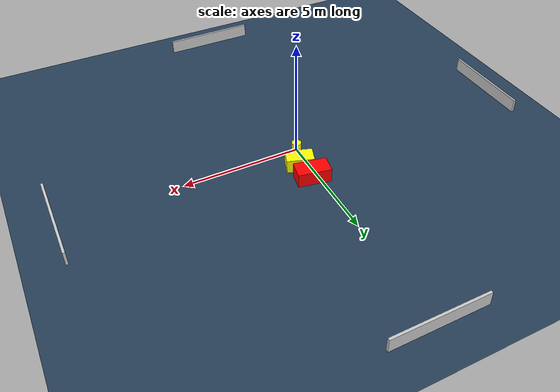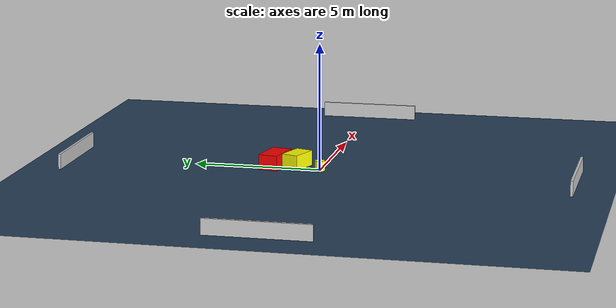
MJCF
<?xml version="1.0" ?>
<mujoco model="generated_environment">
  <option timestep="0.01" integrator="RK4" cone="elliptic"/>
  <default>
    <geom density="1"/>
  </default>
  <asset>
    <texture builtin="gradient" height="3072" name="skybox" rgb1="0.3 0.5 0.7" rgb2="0 0 0" type="skybox" width="512"/>
    <texture builtin="checker" height="300" name="groundplane" rgb1="0.2 0.3 0.4" rgb2="0.1 0.2 0.3" type="2d" width="300"/>
    <material name="groundplane" reflectance="0.2" texrepeat="5 5" texture="groundplane"/>
  </asset>
  <worldbody>
    <light dir="0 0 -1" directional="true" pos="0 0 1.5"/>
    <geom condim="3" friction="0.5 0.005 0.001" material="groundplane" name="floor" pos="0 0 0" size="0 0 0.05" type="plane"/>
    <body name="walls">
      <geom name="wall_1" condim="4" pos="-10.0 0.0 0.3" rgba="0.800000011920929 0.800000011920929 0.800000011920929 1.0" size="0.05 2.0 0.3" type="box"/>
      <geom name="wall_2" condim="4" pos="10.0 0.0 0.3" rgba="0.800000011920929 0.800000011920929 0.800000011920929 1.0" size="0.05 2.0 0.3" type="box"/>
      <geom name="wall_3" condim="4" pos="0.0 -10.0 0.3" rgba="0.800000011920929 0.800000011920929 0.800000011920929 1.0" size="2.0 0.05 0.3" type="box"/>
      <geom name="wall_4" condim="4" pos="0.0 10.0 0.3" rgba="0.800000011920929 0.800000011920929 0.800000011920929 1.0" size="2.0 0.05 0.3" type="box"/>
    </body>
    <body name="robot">
      <joint name="joint_x" type="slide" pos="0 0 0" axis="1 0 0"/>
      <joint name="joint_y" type="slide" pos="0 0 0" axis="0 1 0"/>
      <geom name="robot" type="cylinder" pos="0.0 0.0 0.2" size="0.2 0.2 0.0" mass="5.0" friction="1.0 0.005 0.0001" condim="4" rgba="1.0 1.0 0.0 1.0"/>
    </body>
    <body name="obstacle_1_movable">
      <geom name="obstacle_1_movable" condim="4" pos="0.3749819179162993 1.001849609324168 0.3" euler="0 0 251.07236944519957" friction="0.0 0.005 0.001" rgba="1.0 1.0 0.0 1.0" size="0.3413813779970337 0.5673321470238601 0.3" type="box" mass="0.1"/>
      <joint type="free"/>
    </body>
    <body name="obstacle_2_static">
      <geom name="obstacle_2_static" condim="4" pos="0.25507916284639437 1.8739389698570916 0.3" euler="0 0 348.9986890931887" friction="0.0 0.005 0.001" rgba="1.0 0.0 0.0 1.0" size="0.6890533176856904 0.38852119875363256 0.3" type="box"/>
    </body>
  </worldbody>
  <actuator>
    <motor name="actuator_x" joint="joint_x" gear="1" ctrlrange="-1 1"/>
    <motor name="actuator_y" joint="joint_y" gear="1" ctrlrange="-1 1"/>
  </actuator>
</mujoco>
